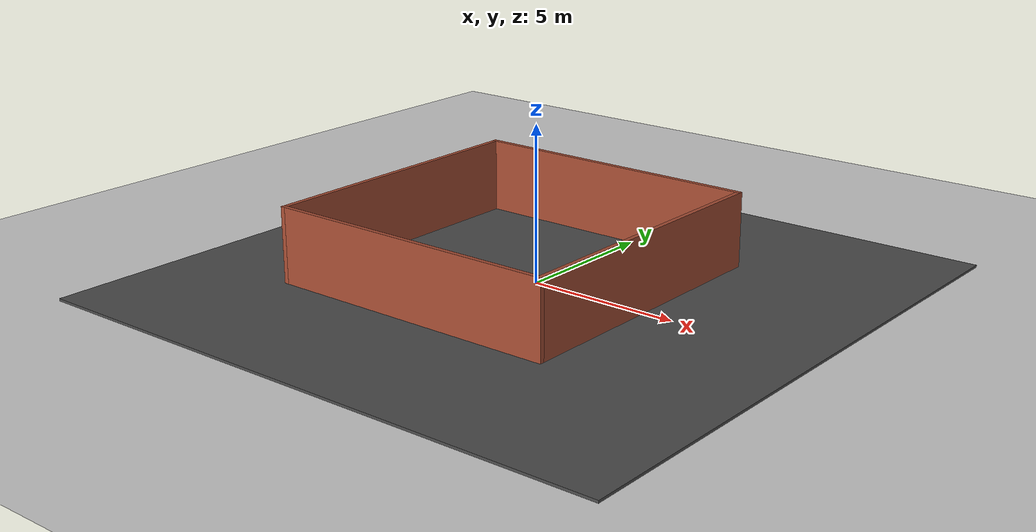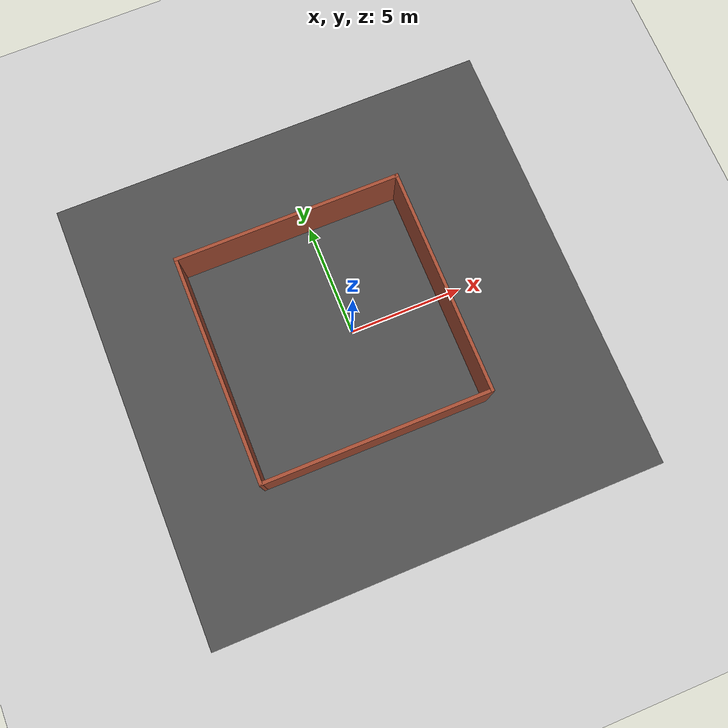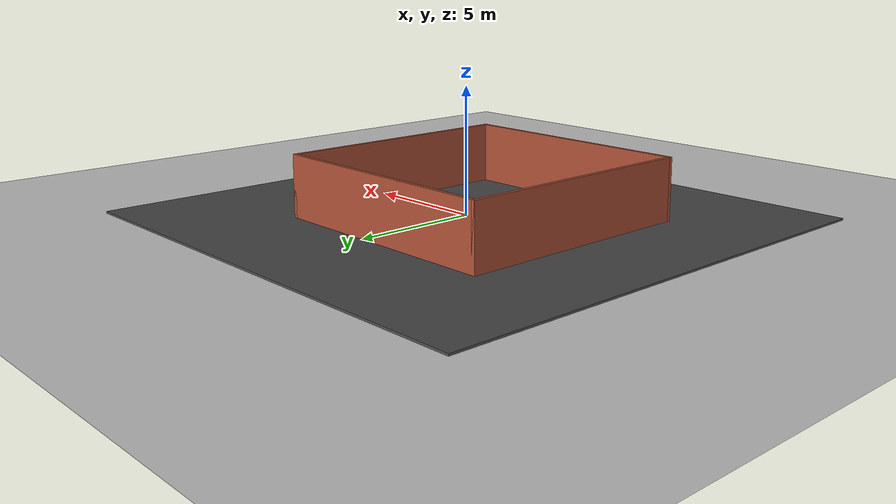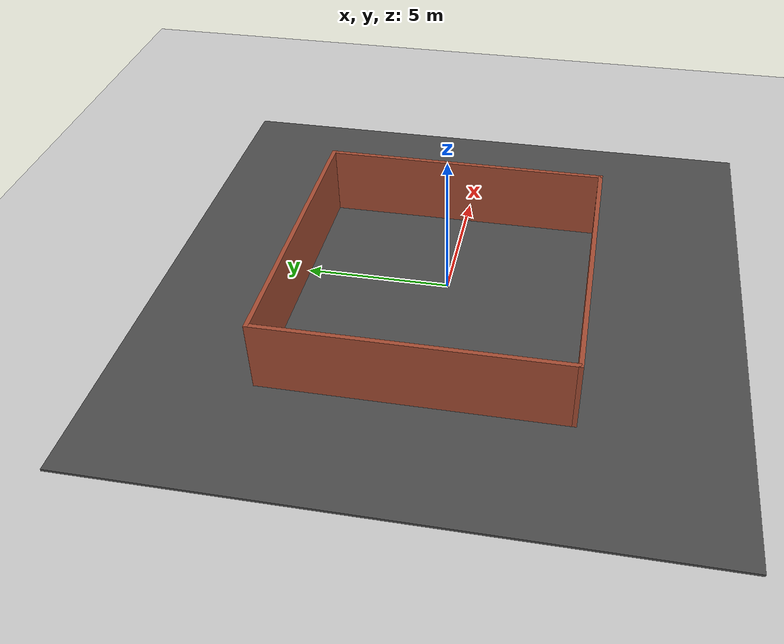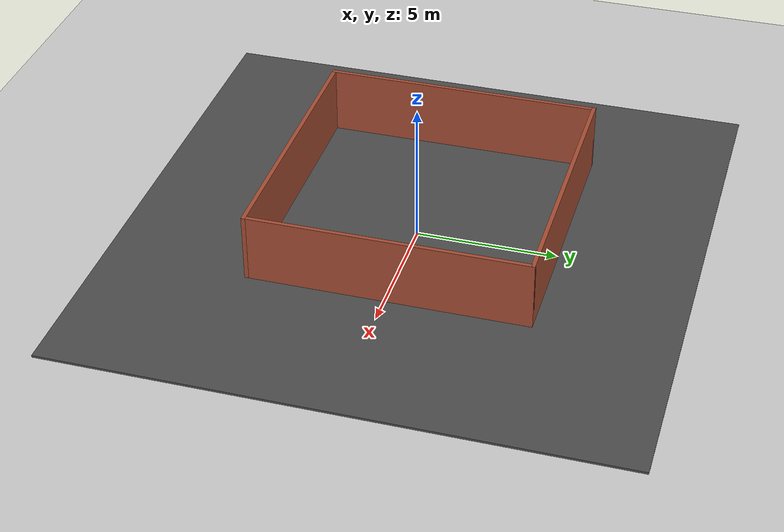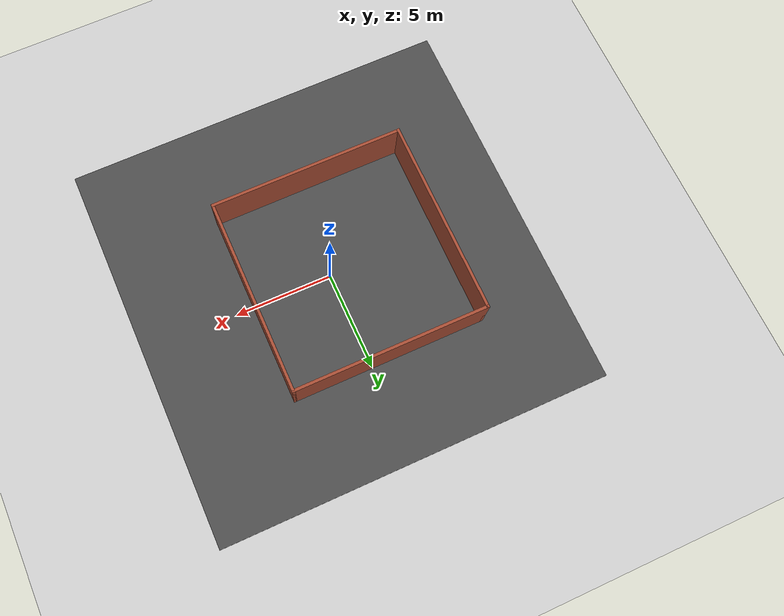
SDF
<sdf version="1.6">
 <world name="default">
  <light name="sun" type="directional">
   <pose>0 0 10 0 -0 0</pose>
   <diffuse>0.8 0.8 0.8 1</diffuse>
   <specular>0.2 0.2 0.2 1</specular>
   <attenuation>
    <range>1000</range>
    <constant>0.9</constant>
    <linear>0.01</linear>
    <quadratic>0.001</quadratic>
   </attenuation>
   <direction>-0.5 0.1 -0.9</direction>
  </light>
  <model name="ground_plane">
   <static>1</static>
   <link name="link">
    <collision name="collision">
     <geometry><plane><normal>0 0 1</normal><size>100 100</size></plane></geometry>
     <surface>
      <contact><collide_bitmask>65535</collide_bitmask></contact>
      <friction><ode><mu>100</mu><mu2>50</mu2></ode></friction>
     </surface>
    </collision>
    <visual name="visual">
     <cast_shadows>0</cast_shadows>
     <geometry><plane><normal>0 0 1</normal><size>100 100</size></plane></geometry>
     <material>
      <script><uri>file://media/materials/scripts/gazebo.material</uri><name>Gazebo/Grey</name></script>
     </material>
    </visual>
   </link>
  </model>
  <gravity>0 0 -9.8</gravity>
  <magnetic_field>6e-06 2.3e-05 -4.2e-05</magnetic_field>
  <atmosphere type="adiabatic"/>
  <physics name="default_physics" default="0" type="ode">
   <max_step_size>0.001</max_step_size>
   <real_time_factor>1</real_time_factor>
   <real_time_update_rate>1000</real_time_update_rate>
  </physics>
  <scene><ambient>0.4 0.4 0.4 1</ambient><background>0.7 0.7 0.7 1</background><shadows>1</shadows></scene>
  <spherical_coordinates>
   <surface_model>EARTH_WGS84</surface_model>
   <latitude_deg>0</latitude_deg>
   <longitude_deg>0</longitude_deg>
   <elevation>0</elevation>
   <heading_deg>0</heading_deg>
  </spherical_coordinates>
  <model name="Room">
   <pose>-0.898974 0.076 0 0 -0 0</pose>
   <link name="Wall_18">
    <collision name="Wall_18_Collision">
     <geometry><box><size>10 0.15 2.5</size></box></geometry>
     <pose>0 0 1.25 0 -0 0</pose>
    </collision>
    <visual name="Wall_18_Visual">
     <pose>0 0 1.25 0 -0 0</pose>
     <geometry><box><size>10 0.15 2.5</size></box></geometry>
     <material>
      <script><uri>file://media/materials/scripts/gazebo.material</uri><name>Gazebo/Bricks</name></script>
      <ambient>1 1 1 1</ambient>
     </material>
     <meta><layer>0</layer></meta>
    </visual>
    <pose>0 -4.925 0 0 -0 3.14159</pose>
   </link>
   <link name="Wall_19">
    <collision name="Wall_19_Collision">
     <geometry><box><size>10 0.15 2.5</size></box></geometry>
     <pose>0 0 1.25 0 -0 0</pose>
    </collision>
    <visual name="Wall_19_Visual">
     <pose>0 0 1.25 0 -0 0</pose>
     <geometry><box><size>10 0.15 2.5</size></box></geometry>
     <material>
      <script><uri>file://media/materials/scripts/gazebo.material</uri><name>Gazebo/Bricks</name></script>
      <ambient>1 1 1 1</ambient>
     </material>
     <meta><layer>0</layer></meta>
    </visual>
    <pose>-4.925 0 0 0 -0 1.5708</pose>
   </link>
   <link name="Wall_20">
    <collision name="Wall_20_Collision">
     <geometry><box><size>10 0.15 2.5</size></box></geometry>
     <pose>0 0 1.25 0 -0 0</pose>
    </collision>
    <visual name="Wall_20_Visual">
     <pose>0 0 1.25 0 -0 0</pose>
     <geometry><box><size>10 0.15 2.5</size></box></geometry>
     <material>
      <script><uri>file://media/materials/scripts/gazebo.material</uri><name>Gazebo/Bricks</name></script>
      <ambient>1 1 1 1</ambient>
     </material>
     <meta><layer>0</layer></meta>
    </visual>
    <pose>0 4.925 0 0 -0 0</pose>
   </link>
   <link name="Wall_21">
    <collision name="Wall_21_Collision">
     <geometry><box><size>10 0.15 2.5</size></box></geometry>
     <pose>0 0 1.25 0 -0 0</pose>
    </collision>
    <visual name="Wall_21_Visual">
     <pose>0 0 1.25 0 -0 0</pose>
     <geometry><box><size>10 0.15 2.5</size></box></geometry>
     <material>
      <script><uri>file://media/materials/scripts/gazebo.material</uri><name>Gazebo/Bricks</name></script>
      <ambient>1 1 1 1</ambient>
     </material>
     <meta><layer>0</layer></meta>
    </visual>
    <pose>4.925 0 0 0 0 -1.5708</pose>
   </link>
   <static>1</static>
  </model>
  <model name="asphalt_plane">
   <static>1</static>
   <link name="link">
    <collision name="collision"><geometry><box><size>20 20 0.1</size></box></geometry></collision>
    <visual name="visual">
     <cast_shadows>0</cast_shadows>
     <geometry><box><size>20 20 0.1</size></box></geometry>
     <material>
      <script>
       <uri>model://asphalt_plane/materials/scripts</uri>
       <uri>model://asphalt_plane/materials/textures</uri>
       <name>vrc/asphalt</name>
      </script>
     </material>
    </visual>
   </link>
   <pose>-0.13153 -0.067701 0 0 -0 0</pose>
  </model>
 </world>
</sdf>
